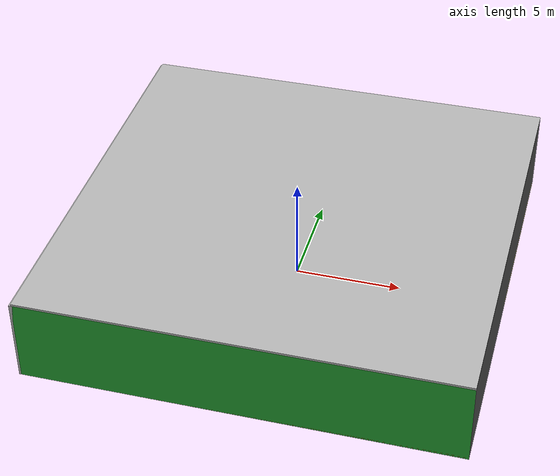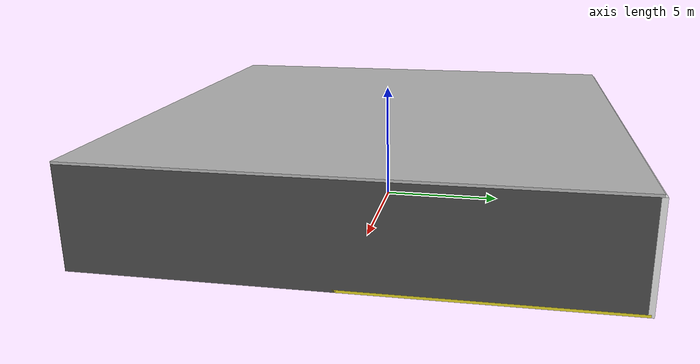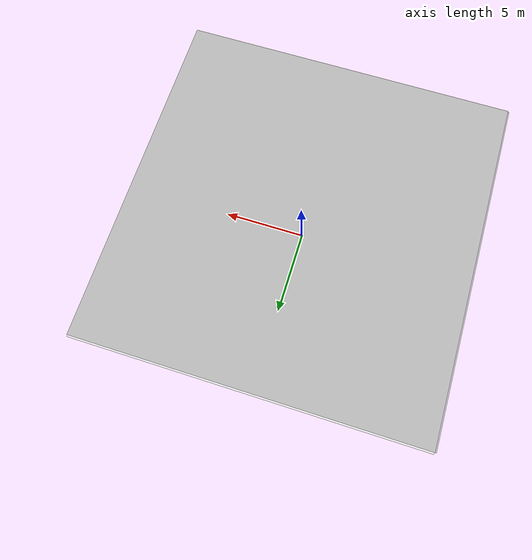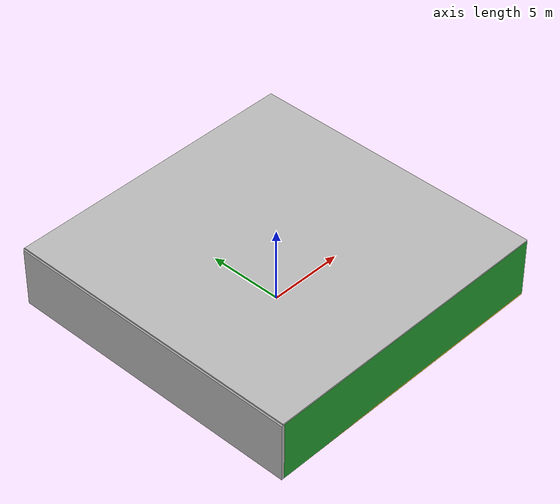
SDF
<sdf version="1.4">
 <world name="default">
  <physics type="ode">
   <max_step_size>0.001</max_step_size>
   <real_time_factor>1</real_time_factor>
   <real_time_update_rate>1000</real_time_update_rate>
   <gravity>0 0 -9.8</gravity>
  </physics>
  <scene><ambient>0.4 0.4 0.4 1</ambient><background>0.7 0.7 0.7 1</background><shadows>1</shadows></scene>
  <model name="Surrounding">
   <static>1</static>
   <link name="Ceiling">
    <collision name="Ceiling_Collision"><geometry><box><size>20 20 0.1</size></box></geometry></collision>
    <visual name="Ceiling_Visual">
     <geometry><box><size>20 20 0.1</size></box></geometry>
     <material>
      <script><uri>file://media/materials/scripts/gazebo.material</uri><name>Gazebo/LightOff</name></script>
     </material>
    </visual>
    <pose>0 0 4.05 0 0 0</pose>
   </link>
   <link name="Wall_South">
    <collision name="Wall_South_Collision">
     <geometry><box><size>20 0 4</size></box></geometry>
     <pose>0 0 2 0 -0 0</pose>
    </collision>
    <visual name="Wall_South_Visual">
     <pose>0 0 2 0 -0 0</pose>
     <geometry><box><size>20 0 4</size></box></geometry>
     <material>
      <script><uri>file://media/materials/scripts/gazebo.material</uri><name>Gazebo/GreenGlow</name></script>
     </material>
    </visual>
    <velocity_decay><linear>0</linear><angular>0</angular></velocity_decay>
    <pose>0 -10 0 0 -0 0</pose>
   </link>
   <link name="Wall_East">
    <collision name="Wall_21_Collision">
     <geometry><box><size>20 0 4</size></box></geometry>
     <pose>0 0 2 0 -0 0</pose>
    </collision>
    <visual name="Wall_21_Visual">
     <pose>0 0 2 0 -0 0</pose>
     <geometry><box><size>20 0 4</size></box></geometry>
     <material>
      <script><uri>file://media/materials/scripts/gazebo.material</uri><name>Gazebo/DarkGrey</name></script>
     </material>
    </visual>
    <velocity_decay><linear>0</linear><angular>0</angular></velocity_decay>
    <pose>10 0 0 0 -0 1.5708</pose>
   </link>
   <link name="Wall_North">
    <collision name="Wall_22_Collision">
     <geometry><box><size>20 0.2 4</size></box></geometry>
     <pose>0 0 2 0 -0 0</pose>
    </collision>
    <visual name="Wall_22_Visual">
     <pose>0 0 2 0 -0 0</pose>
     <geometry><box><size>20 0.2 4</size></box></geometry>
     <material>
      <script><uri>file://media/materials/scripts/gazebo.material</uri><name>Gazebo/WhiteGlow</name></script>
     </material>
    </visual>
    <velocity_decay><linear>0</linear><angular>0</angular></velocity_decay>
    <pose>0 10 0 0 -0 0</pose>
   </link>
   <link name="Wall_West">
    <collision name="Wall_23_Collision">
     <geometry><box><size>20 0.2 4</size></box></geometry>
     <pose>0 0 2 0 -0 0</pose>
    </collision>
    <visual name="Wall_23_Visual">
     <pose>0 0 2 0 -0 0</pose>
     <geometry><box><size>20 0.2 4</size></box></geometry>
     <material>
      <script><uri>file://media/materials/scripts/gazebo.material</uri><name>Gazebo/Pioneer2Body</name></script>
     </material>
    </visual>
    <velocity_decay><linear>0</linear><angular>0</angular></velocity_decay>
    <pose>-10 0 0 0 0 -1.5708</pose>
   </link>
   <link name="Ground_link">
    <collision name="collision">
     <pose>0 0 .05 0 -0 0</pose>
     <geometry><box><size>20 20 0.1</size></box></geometry>
    </collision>
    <visual name="visual">
     <pose>0 0 .05 0 -0 0</pose>
     <geometry><box><size>20 20 0.1</size></box></geometry>
     <material>
      <script><uri>file://media/materials/scripts/gazebo.material</uri><name>Gazebo/Yellow</name></script>
     </material>
    </visual>
   </link>
   <static>1</static>
  </model>
  <spherical_coordinates>
   <surface_model>EARTH_WGS84</surface_model>
   <latitude_deg>0</latitude_deg>
   <longitude_deg>0</longitude_deg>
   <elevation>0</elevation>
   <heading_deg>0</heading_deg>
  </spherical_coordinates>
  <light name="lightball_0" type="diffuse">
   <diffuse>0.8 0.8 0.8 1</diffuse>
   <specular>0.2 0.2 0.2 1</specular>
   <attenuation>
    <range>100</range>
    <constant>0.7</constant>
    <linear>0.01</linear>
    <quadratic>0.001</quadratic>
   </attenuation>
   <direction>-0.5 0.1 -0.9</direction>
   <pose>1.83729410625 -6.49355682313 3.69149625097 0 0 0</pose>
  </light>
  <light name="lightball_1" type="diffuse">
   <diffuse>0.8 0.8 0.8 1</diffuse>
   <specular>0.2 0.2 0.2 1</specular>
   <attenuation>
    <range>100</range>
    <constant>0.7</constant>
    <linear>0.01</linear>
    <quadratic>0.001</quadratic>
   </attenuation>
   <direction>-0.5 0.1 -0.9</direction>
   <pose>-2.12699076885 -2.29194767768 2.78194205897 0 0 0</pose>
  </light>
  <light name="lightball_2" type="diffuse">
   <diffuse>0.8 0.8 0.8 1</diffuse>
   <specular>0.2 0.2 0.2 1</specular>
   <attenuation>
    <range>100</range>
    <constant>0.7</constant>
    <linear>0.01</linear>
    <quadratic>0.001</quadratic>
   </attenuation>
   <direction>-0.5 0.1 -0.9</direction>
   <pose>5.80768917973 7.11238928661 2.73299371641 0 0 0</pose>
  </light>
  <light name="lightball_3" type="diffuse">
   <diffuse>0.8 0.8 0.8 1</diffuse>
   <specular>0.2 0.2 0.2 1</specular>
   <attenuation>
    <range>100</range>
    <constant>0.7</constant>
    <linear>0.01</linear>
    <quadratic>0.001</quadratic>
   </attenuation>
   <direction>-0.5 0.1 -0.9</direction>
   <pose>1.6024718073 3.05131096445 0.686276020167 0 0 0</pose>
  </light>
  <light name="lightball_4" type="diffuse">
   <diffuse>0.8 0.8 0.8 1</diffuse>
   <specular>0.2 0.2 0.2 1</specular>
   <attenuation>
    <range>100</range>
    <constant>0.7</constant>
    <linear>0.01</linear>
    <quadratic>0.001</quadratic>
   </attenuation>
   <direction>-0.5 0.1 -0.9</direction>
   <pose>1.03000445837 7.48412142434 2.94054302432 0 0 0</pose>
  </light>
  <light name="lightball_5" type="diffuse">
   <diffuse>0.8 0.8 0.8 1</diffuse>
   <specular>0.2 0.2 0.2 1</specular>
   <attenuation>
    <range>100</range>
    <constant>0.7</constant>
    <linear>0.01</linear>
    <quadratic>0.001</quadratic>
   </attenuation>
   <direction>-0.5 0.1 -0.9</direction>
   <pose>-4.37381602594 -0.551136429022 2.19366245853 0 0 0</pose>
  </light>
  <light name="lightball_6" type="diffuse">
   <diffuse>0.8 0.8 0.8 1</diffuse>
   <specular>0.2 0.2 0.2 1</specular>
   <attenuation>
    <range>100</range>
    <constant>0.7</constant>
    <linear>0.01</linear>
    <quadratic>0.001</quadratic>
   </attenuation>
   <direction>-0.5 0.1 -0.9</direction>
   <pose>-7.83346718949 1.71565857186 1.97075201274 0 0 0</pose>
  </light>
  <light name="lightball_7" type="diffuse">
   <diffuse>0.8 0.8 0.8 1</diffuse>
   <specular>0.2 0.2 0.2 1</specular>
   <attenuation>
    <range>100</range>
    <constant>0.7</constant>
    <linear>0.01</linear>
    <quadratic>0.001</quadratic>
   </attenuation>
   <direction>-0.5 0.1 -0.9</direction>
   <pose>-9.66098226379 2.5725718231 1.47649026236 0 0 0</pose>
  </light>
  <light name="lightball_8" type="diffuse">
   <diffuse>0.8 0.8 0.8 1</diffuse>
   <specular>0.2 0.2 0.2 1</specular>
   <attenuation>
    <range>100</range>
    <constant>0.7</constant>
    <linear>0.01</linear>
    <quadratic>0.001</quadratic>
   </attenuation>
   <direction>-0.5 0.1 -0.9</direction>
   <pose>-7.75105584241 -7.91178099526 1.37292602057 0 0 0</pose>
  </light>
  <light name="lightball_9" type="diffuse">
   <diffuse>0.8 0.8 0.8 1</diffuse>
   <specular>0.2 0.2 0.2 1</specular>
   <attenuation>
    <range>100</range>
    <constant>0.7</constant>
    <linear>0.01</linear>
    <quadratic>0.001</quadratic>
   </attenuation>
   <direction>-0.5 0.1 -0.9</direction>
   <pose>5.64355761779 -8.75071461797 1.15358425178 0 0 0</pose>
  </light>
  <light name="lightball_10" type="diffuse">
   <diffuse>0.8 0.8 0.8 1</diffuse>
   <specular>0.2 0.2 0.2 1</specular>
   <attenuation>
    <range>100</range>
    <constant>0.7</constant>
    <linear>0.01</linear>
    <quadratic>0.001</quadratic>
   </attenuation>
   <direction>-0.5 0.1 -0.9</direction>
   <pose>4.16260281091 -6.87240957426 0.633149087403 0 0 0</pose>
  </light>
  <light name="lightball_11" type="diffuse">
   <diffuse>0.8 0.8 0.8 1</diffuse>
   <specular>0.2 0.2 0.2 1</specular>
   <attenuation>
    <range>100</range>
    <constant>0.7</constant>
    <linear>0.01</linear>
    <quadratic>0.001</quadratic>
   </attenuation>
   <direction>-0.5 0.1 -0.9</direction>
   <pose>-0.528998663266 2.7939028287 2.68749354657 0 0 0</pose>
  </light>
  <light name="lightball_12" type="diffuse">
   <diffuse>0.8 0.8 0.8 1</diffuse>
   <specular>0.2 0.2 0.2 1</specular>
   <attenuation>
    <range>100</range>
    <constant>0.7</constant>
    <linear>0.01</linear>
    <quadratic>0.001</quadratic>
   </attenuation>
   <direction>-0.5 0.1 -0.9</direction>
   <pose>3.65467431996 -8.30195080638 3.84950681232 0 0 0</pose>
  </light>
  <light name="lightball_13" type="diffuse">
   <diffuse>0.8 0.8 0.8 1</diffuse>
   <specular>0.2 0.2 0.2 1</specular>
   <attenuation>
    <range>100</range>
    <constant>0.7</constant>
    <linear>0.01</linear>
    <quadratic>0.001</quadratic>
   </attenuation>
   <direction>-0.5 0.1 -0.9</direction>
   <pose>1.08267690226 9.79905628926 1.67822508628 0 0 0</pose>
  </light>
  <include><uri>model://table</uri><pose>-6.8132456169 -0.928240360372 0 0 0 2.27521773057</pose></include>
  <include>
   <uri>model://textured_shapes</uri>
   <pose>-3.88212864118 -3.99926414245 0 0 0 1.71346386594</pose>
  </include>
  <include><uri>model://cabinet</uri><pose>-3.94253136423 -2.60306763843 0 0 0 2.74361608199</pose></include>
  <include><uri>model://table</uri><pose>6.39132942886 -2.66135895066 0 0 0 0.525908926796</pose></include>
 </world>
</sdf>

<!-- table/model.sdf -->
<sdf version="1.5">
  <model name="table">
    <static>true</static>
    <link name="link">
      <collision name="surface">
        <pose>0 0 1.0 0 0 0</pose>
        <geometry>
          <box>
            <size>1.5 0.8 0.03</size>
          </box>
        </geometry>
        <surface>
          <friction>
            <ode>
              <mu>0.6</mu>
              <mu2>0.6</mu2>
            </ode>
          </friction>
        </surface>
      </collision>
      <visual name="visual1">
        <pose>0 0 1.0 0 0 0</pose>
        <geometry>
          <box>
            <size>1.5 0.8 0.03</size>
          </box>
        </geometry>
        <material>
          <script>
            <uri>model://media/materials/scripts/gazebo.material</uri>
            <name>Gazebo/Wood</name>
          </script>
        </material>
      </visual>
      <collision name="front_left_leg">
        <pose>0.68 0.38 0.5 0 0 0</pose>
        <geometry>
          <cylinder>
            <radius>0.02</radius>
            <length>1.0</length>
          </cylinder>
        </geometry>
      </collision>
      <visual name="front_left_leg">
        <pose>0.68 0.38 0.5 0 0 0</pose>
        <geometry>
          <cylinder>
            <radius>0.02</radius>
            <length>1.0</length>
          </cylinder>
        </geometry>
        <material>
          <script>
            <uri>model://media/materials/scripts/gazebo.material</uri>
            <name>Gazebo/Grey</name>
          </script>
        </material>
      </visual>
      <collision name="front_right_leg">
        <pose>0.68 -0.38 0.5 0 0 0</pose>
        <geometry>
          <cylinder>
            <radius>0.02</radius>
            <length>1.0</length>
          </cylinder>
        </geometry>
      </collision>
      <visual name="front_right_leg">
        <pose>0.68 -0.38 0.5 0 0 0</pose>
        <geometry>
          <cylinder>
            <radius>0.02</radius>
            <length>1.0</length>
          </cylinder>
        </geometry>
        <material>
          <script>
            <uri>model://media/materials/scripts/gazebo.material</uri>
            <name>Gazebo/Grey</name>
          </script>
        </material>
      </visual>
      <collision name="back_right_leg">
        <pose>-0.68 -0.38 0.5 0 0 0</pose>
        <geometry>
          <cylinder>
            <radius>0.02</radius>
            <length>1.0</length>
          </cylinder>
        </geometry>
      </collision>
      <visual name="back_right_leg">
        <pose>-0.68 -0.38 0.5 0 0 0</pose>
        <geometry>
          <cylinder>
            <radius>0.02</radius>
            <length>1.0</length>
          </cylinder>
        </geometry>
        <material>
          <script>
            <uri>model://media/materials/scripts/gazebo.material</uri>
            <name>Gazebo/Grey</name>
          </script>
        </material>
      </visual>
      <collision name="back_left_leg">
        <pose>-0.68 0.38 0.5 0 0 0</pose>
        <geometry>
          <cylinder>
            <radius>0.02</radius>
            <length>1.0</length>
          </cylinder>
        </geometry>
      </collision>
      <visual name="back_left_leg">
        <pose>-0.68 0.38 0.5 0 0 0</pose>
        <geometry>
          <cylinder>
            <radius>0.02</radius>
            <length>1.0</length>
          </cylinder>
        </geometry>
        <material>
          <script>
            <uri>model://media/materials/scripts/gazebo.material</uri>
            <name>Gazebo/Grey</name>
          </script>
        </material>
      </visual>
    </link>
  </model>
</sdf>

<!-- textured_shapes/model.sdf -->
<sdf version="1.6">
  <model name="textured_shapes">
    <pose>0 0 0.5 0 0 0</pose>
    <link name="box">
      <pose>0 -1.5 0 0 0 0</pose>
      <collision name="collision">
        <geometry>
          <box>
            <size>1 1 1</size>
          </box>
        </geometry>
      </collision>
      <visual name="visual">
        <geometry>
          <box>
            <size>1 1 1</size>
          </box>
        </geometry>
        <material>
          <script>
            <uri>model://../model_source/models/textured_shapes/materials/scripts</uri>
            <uri>model://../model_source/models/textured_shapes/materials/textures</uri>
            <name>TexturedShape/Squares</name>
          </script>
        </material>
      </visual>
    </link>
    <link name="sphere">
      <collision name="collision">
        <geometry>
          <sphere>
            <radius>0.5</radius>
          </sphere>
        </geometry>
      </collision>
      <visual name="visual">
        <geometry>
          <sphere>
            <radius>0.5</radius>
          </sphere>
        </geometry>
        <material>
          <script>
            <uri>model://../model_source/models/textured_shapes/materials/scripts</uri>
            <uri>model://../model_source/models/textured_shapes/materials/textures</uri>
            <name>TexturedShape/Squares</name>
          </script>
        </material>
      </visual>
    </link>
    <link name="cylinder">
      <pose>0 1.5 0 0 0 0</pose>
      <collision name="collision">
        <geometry>
          <cylinder>
            <radius>0.5</radius>
            <length>1</length>
          </cylinder>
        </geometry>
      </collision>
      <visual name="visual">
        <geometry>
          <cylinder>
            <radius>0.5</radius>
            <length>1</length>
          </cylinder>
        </geometry>
        <material>
          <script>
            <uri>model://../model_source/models/textured_shapes/materials/scripts</uri>
            <uri>model://../model_source/models/textured_shapes/materials/textures</uri>
            <name>TexturedShape/Squares</name>
          </script>
        </material>
      </visual>
    </link>
  </model>
</sdf>

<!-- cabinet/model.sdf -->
<sdf version="1.5">
  <model name="cabinet">
    <static>true</static>
    <link name="cabinet_bottom_plate">
      <inertial>
        <pose>0 0 -1 0 0 0</pose>
        <inertia>
          <ixx>2.050000</ixx>
          <ixy>0</ixy>
          <ixz>0</ixz>
          <iyy>2.050000</iyy>
          <iyz>0</iyz>
          <izz>2.050000</izz>
        </inertia>
        <mass>25.000000</mass>
      </inertial>
      <collision name="cabinet_bottom_plate_geom">
        <pose>0 0 0.010000 0 0 0</pose>
        <geometry>
          <box>
            <size>0.450000 0.450000 0.020000</size>
          </box>
        </geometry>
      </collision>
      <visual name="cabinet_bottom_plate_geom_visual">
        <pose>0 0 0.010000 0 0 0</pose>
        <geometry>
          <box>
            <size>0.450000 0.450000 0.020000</size>
          </box>
        </geometry>
        <material>
          <script>
            <uri>model://media/materials/scripts/gazebo.material</uri>
            <name>Gazebo/Wood</name>
          </script>
        </material>
      </visual>
      <collision name="cabinet_bottom_plate_geom_cabinet_back_plate">
        <pose>0.235000 0 0.510000 0 0 0</pose>
        <geometry>
          <box>
            <size>0.020000 0.450000 1.020000</size>
          </box>
        </geometry>
      </collision>
      <visual name="cabinet_bottom_plate_geom_cabinet_back_plate_visual">
        <pose>0.235000 0 0.510000 0 0 0</pose>
        <geometry>
          <box>
            <size>0.020000 0.450000 1.020000</size>
          </box>
        </geometry>
        <material>
          <script>
            <uri>model://media/materials/scripts/gazebo.material</uri>
            <name>Gazebo/Wood</name>
          </script>
        </material>
      </visual>
      <collision name="cabinet_bottom_plate_geom_cabinet_left_plate">
        <pose>0 0.235000 0.510000 0 0 0</pose>
        <geometry>
          <box>
            <size>0.450000 0.020000 1.020000</size>
          </box>
        </geometry>
      </collision>
      <visual name="cabinet_bottom_plate_geom_cabinet_left_plate_visual">
        <pose>0 0.235000 0.510000 0 0 0</pose>
        <geometry>
          <box>
            <size>0.450000 0.020000 1.020000</size>
          </box>
        </geometry>
        <material>
          <script>
            <uri>model://media/materials/scripts/gazebo.material</uri>
            <name>Gazebo/Wood</name>
          </script>
        </material>
      </visual>
      <collision name="cabinet_bottom_plate_geom_cabinet_middle_plate">
        <pose>0 0 0.510000 0 0 0</pose>
        <geometry>
          <box>
            <size>0.450000 0.450000 0.020000</size>
          </box>
        </geometry>
      </collision>
      <visual name="cabinet_bottom_plate_geom_cabinet_middle_plate_visual">
        <pose>0 0 0.510000 0 0 0</pose>
        <geometry>
          <box>
            <size>0.450000 0.450000 0.020000</size>
          </box>
        </geometry>
        <material>
          <script>
            <uri>model://media/materials/scripts/gazebo.material</uri>
            <name>Gazebo/Wood</name>
          </script>
        </material>
      </visual>
      <collision name="cabinet_bottom_plate_geom_cabinet_right_plate">
        <pose>0 -0.235000 0.510000 0 0 0</pose>
        <geometry>
          <box>
            <size>0.450000 0.020000 1.020000</size>
          </box>
        </geometry>
      </collision>
      <visual name="cabinet_bottom_plate_geom_cabinet_right_plate_visual">
        <pose>0 -0.235000 0.510000 0 0 0</pose>
        <geometry>
          <box>
            <size>0.450000 0.020000 1.020000</size>
          </box>
        </geometry>
        <material>
          <script>
            <uri>model://media/materials/scripts/gazebo.material</uri>
            <name>Gazebo/Wood</name>
          </script>
        </material>
      </visual>
      <collision name="cabinet_bottom_plate_geom_cabinet_top_plate">
        <pose>0 0 1.010000 0 0 0</pose>
        <geometry>
          <box>
            <size>0.450000 0.450000 0.020000</size>
          </box>
        </geometry>
      </collision>
      <visual name="cabinet_bottom_plate_geom_cabinet_top_plate_visual">
        <pose>0 0 1.010000 0 0 0</pose>
        <geometry>
          <box>
            <size>0.450000 0.450000 0.020000</size>
          </box>
        </geometry>
        <material>
          <script>
            <uri>model://media/materials/scripts/gazebo.material</uri>
            <name>Gazebo/Wood</name>
          </script>
        </material>
      </visual>
    </link>
  </model>
</sdf>
